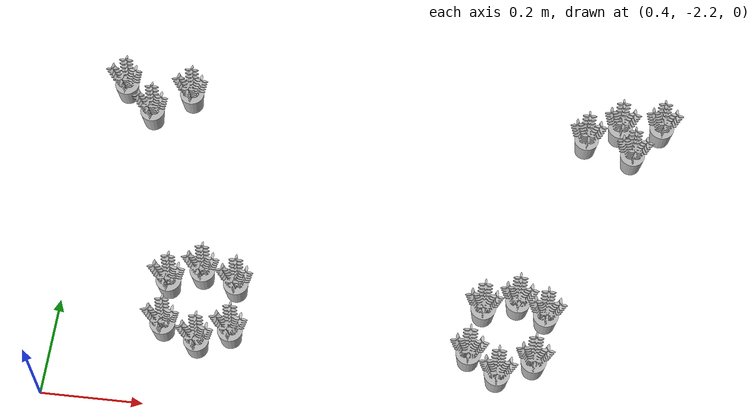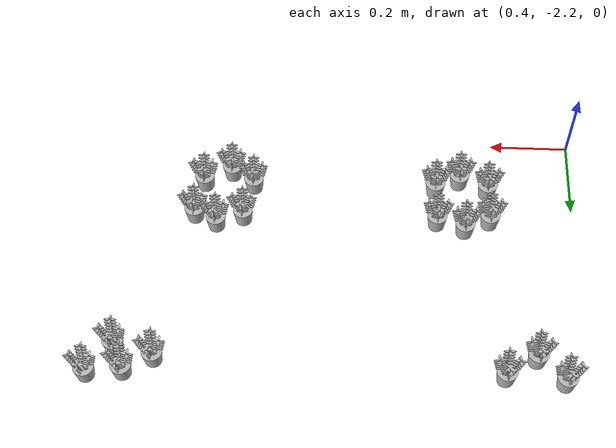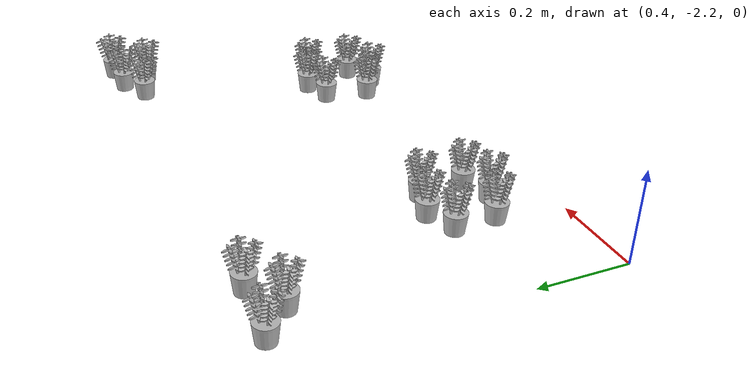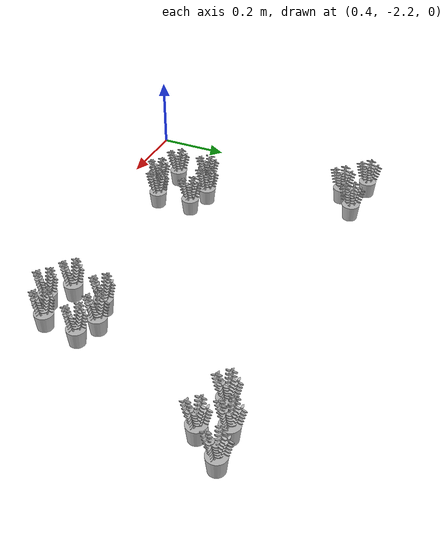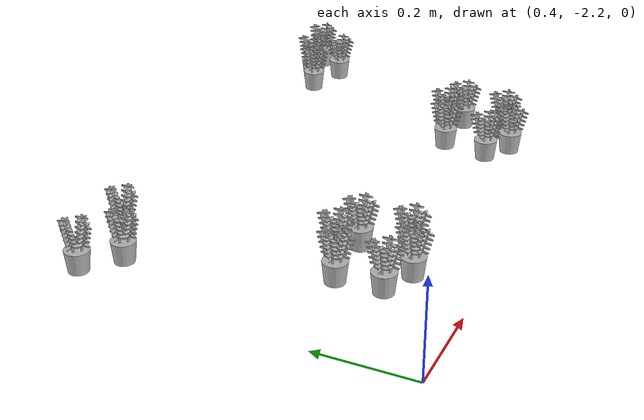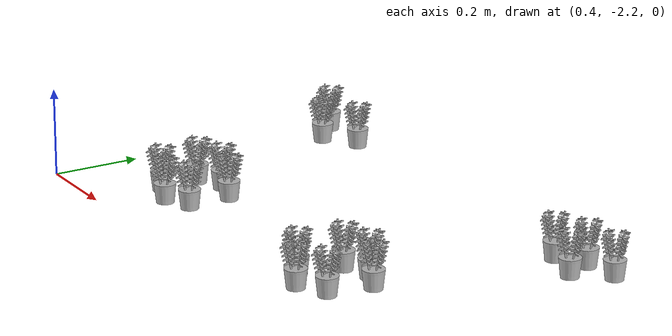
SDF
<sdf version="1.10">
 <world name="default">
  <model name="Plant_white_11">
   <static>false</static>
   <link name="link_0">
    <inertial>
     <pose>0 0 0.02 0 0 0</pose>
     <mass>0.025000000000000001</mass>
     <inertia>
      <ixx>2.5000000000000001e-05</ixx>
      <ixy>0</ixy>
      <ixz>0</ixz>
      <iyy>2.5000000000000001e-05</iyy>
      <iyz>0</iyz>
      <izz>7.9999999999999996e-06</izz>
     </inertia>
    </inertial>
    <visual name="visual">
     <geometry><mesh><uri>model://Plants/plant_white.dae</uri><scale>0.001 0.001 0.001</scale></mesh></geometry>
    </visual>
    <collision name="collision">
     <max_contacts>3</max_contacts>
     <pose>0 0 0.050000000000000003 0 0 0</pose>
     <geometry>
      <cylinder><radius>0.025000000000000001</radius><length>0.10000000000000001</length></cylinder>
     </geometry>
     <surface>
      <friction>
       <ode><mu>0.90000000000000002</mu><mu2>0.90000000000000002</mu2></ode>
       <torsional>
        <coefficient>1</coefficient>
        <patch_radius>0</patch_radius>
        <surface_radius>0</surface_radius>
        <use_patch_radius>true</use_patch_radius>
        <ode><slip>0</slip></ode>
       </torsional>
      </friction>
      <contact>
       <ode>
        <soft_cfm>0</soft_cfm>
        <soft_erp>0.20000000000000001</soft_erp>
        <kp>10</kp>
        <kd>1000000000</kd>
        <max_vel>0</max_vel>
        <min_depth>0.01</min_depth>
       </ode>
      </contact>
     </surface>
    </collision>
   </link>
   <pose>0.58798115037459942 -1.5186695398473964 0 0 0 0</pose>
   <plugin filename="gz-sim-label-system" name="gz::sim::systems::Label"><label>6</label></plugin>
  </model>
  <model name="Plant_white_14">
   <static>false</static>
   <link name="link_0">
    <inertial>
     <pose>0 0 0.02 0 0 0</pose>
     <mass>0.025000000000000001</mass>
     <inertia>
      <ixx>2.5000000000000001e-05</ixx>
      <ixy>0</ixy>
      <ixz>0</ixz>
      <iyy>2.5000000000000001e-05</iyy>
      <iyz>0</iyz>
      <izz>7.9999999999999996e-06</izz>
     </inertia>
    </inertial>
    <visual name="visual">
     <geometry><mesh><uri>model://Plants/plant_white.dae</uri><scale>0.001 0.001 0.001</scale></mesh></geometry>
    </visual>
    <collision name="collision">
     <max_contacts>3</max_contacts>
     <pose>0 0 0.050000000000000003 0 0 0</pose>
     <geometry>
      <cylinder><radius>0.025000000000000001</radius><length>0.10000000000000001</length></cylinder>
     </geometry>
     <surface>
      <friction>
       <ode><mu>0.90000000000000002</mu><mu2>0.90000000000000002</mu2></ode>
       <torsional>
        <coefficient>1</coefficient>
        <patch_radius>0</patch_radius>
        <surface_radius>0</surface_radius>
        <use_patch_radius>true</use_patch_radius>
        <ode><slip>0</slip></ode>
       </torsional>
      </friction>
      <contact>
       <ode>
        <soft_cfm>0</soft_cfm>
        <soft_erp>0.20000000000000001</soft_erp>
        <kp>10</kp>
        <kd>1000000000</kd>
        <max_vel>0</max_vel>
        <min_depth>0.01</min_depth>
       </ode>
      </contact>
     </surface>
    </collision>
   </link>
   <pose>0.51274546992780001 -1.5685086130890789 0 0 0 0</pose>
   <plugin filename="gz-sim-label-system" name="gz::sim::systems::Label"><label>6</label></plugin>
  </model>
  <model name="Plant_white_15">
   <static>false</static>
   <link name="link_0">
    <inertial>
     <pose>0 0 0.02 0 0 0</pose>
     <mass>0.025000000000000001</mass>
     <inertia>
      <ixx>2.5000000000000001e-05</ixx>
      <ixy>0</ixy>
      <ixz>0</ixz>
      <iyy>2.5000000000000001e-05</iyy>
      <iyz>0</iyz>
      <izz>7.9999999999999996e-06</izz>
     </inertia>
    </inertial>
    <visual name="visual">
     <geometry><mesh><uri>model://Plants/plant_white.dae</uri><scale>0.001 0.001 0.001</scale></mesh></geometry>
    </visual>
    <collision name="collision">
     <max_contacts>3</max_contacts>
     <pose>0 0 0.050000000000000003 0 0 0</pose>
     <geometry>
      <cylinder><radius>0.025000000000000001</radius><length>0.10000000000000001</length></cylinder>
     </geometry>
     <surface>
      <friction>
       <ode><mu>0.90000000000000002</mu><mu2>0.90000000000000002</mu2></ode>
       <torsional>
        <coefficient>1</coefficient>
        <patch_radius>0</patch_radius>
        <surface_radius>0</surface_radius>
        <use_patch_radius>true</use_patch_radius>
        <ode><slip>0</slip></ode>
       </torsional>
      </friction>
      <contact>
       <ode>
        <soft_cfm>0</soft_cfm>
        <soft_erp>0.20000000000000001</soft_erp>
        <kp>10</kp>
        <kd>1000000000</kd>
        <max_vel>0</max_vel>
        <min_depth>0.01</min_depth>
       </ode>
      </contact>
     </surface>
    </collision>
   </link>
   <pose>0.44913160393658186 -1.5100517375998344 0 0 0 0</pose>
   <plugin filename="gz-sim-label-system" name="gz::sim::systems::Label"><label>6</label></plugin>
  </model>
  <model name="Plant_white_17">
   <static>false</static>
   <link name="link_0">
    <inertial>
     <pose>0 0 0.02 0 0 0</pose>
     <mass>0.025000000000000001</mass>
     <inertia>
      <ixx>2.5000000000000001e-05</ixx>
      <ixy>0</ixy>
      <ixz>0</ixz>
      <iyy>2.5000000000000001e-05</iyy>
      <iyz>0</iyz>
      <izz>7.9999999999999996e-06</izz>
     </inertia>
    </inertial>
    <visual name="visual">
     <geometry><mesh><uri>model://Plants/plant_white.dae</uri><scale>0.001 0.001 0.001</scale></mesh></geometry>
    </visual>
    <collision name="collision">
     <max_contacts>3</max_contacts>
     <pose>0 0 0.050000000000000003 0 0 0</pose>
     <geometry>
      <cylinder><radius>0.025000000000000001</radius><length>0.10000000000000001</length></cylinder>
     </geometry>
     <surface>
      <friction>
       <ode><mu>0.90000000000000002</mu><mu2>0.90000000000000002</mu2></ode>
       <torsional>
        <coefficient>1</coefficient>
        <patch_radius>0</patch_radius>
        <surface_radius>0</surface_radius>
        <use_patch_radius>true</use_patch_radius>
        <ode><slip>0</slip></ode>
       </torsional>
      </friction>
      <contact>
       <ode>
        <soft_cfm>0</soft_cfm>
        <soft_erp>0.20000000000000001</soft_erp>
        <kp>10</kp>
        <kd>1000000000</kd>
        <max_vel>0</max_vel>
        <min_depth>0.01</min_depth>
       </ode>
      </contact>
     </surface>
    </collision>
   </link>
   <pose>0.74503902007755074 -1.945533592182525 0 0 0 0</pose>
   <plugin filename="gz-sim-label-system" name="gz::sim::systems::Label"><label>6</label></plugin>
  </model>
  <model name="Plant_white_18">
   <static>false</static>
   <link name="link_0">
    <inertial>
     <pose>0 0 0.02 0 0 0</pose>
     <mass>0.025000000000000001</mass>
     <inertia>
      <ixx>2.5000000000000001e-05</ixx>
      <ixy>0</ixy>
      <ixz>0</ixz>
      <iyy>2.5000000000000001e-05</iyy>
      <iyz>0</iyz>
      <izz>7.9999999999999996e-06</izz>
     </inertia>
    </inertial>
    <visual name="visual">
     <geometry><mesh><uri>model://Plants/plant_white.dae</uri><scale>0.001 0.001 0.001</scale></mesh></geometry>
    </visual>
    <collision name="collision">
     <max_contacts>3</max_contacts>
     <pose>0 0 0.050000000000000003 0 0 0</pose>
     <geometry>
      <cylinder><radius>0.025000000000000001</radius><length>0.10000000000000001</length></cylinder>
     </geometry>
     <surface>
      <friction>
       <ode><mu>0.90000000000000002</mu><mu2>0.90000000000000002</mu2></ode>
       <torsional>
        <coefficient>1</coefficient>
        <patch_radius>0</patch_radius>
        <surface_radius>0</surface_radius>
        <use_patch_radius>true</use_patch_radius>
        <ode><slip>0</slip></ode>
       </torsional>
      </friction>
      <contact>
       <ode>
        <soft_cfm>0</soft_cfm>
        <soft_erp>0.20000000000000001</soft_erp>
        <kp>10</kp>
        <kd>1000000000</kd>
        <max_vel>0</max_vel>
        <min_depth>0.01</min_depth>
       </ode>
      </contact>
     </surface>
    </collision>
   </link>
   <pose>0.67535575777201484 -1.9248205999820047 0 0 0 0</pose>
   <plugin filename="gz-sim-label-system" name="gz::sim::systems::Label"><label>6</label></plugin>
  </model>
  <model name="Plant_white_19">
   <static>false</static>
   <link name="link_0">
    <inertial>
     <pose>0 0 0.02 0 0 0</pose>
     <mass>0.025000000000000001</mass>
     <inertia>
      <ixx>2.5000000000000001e-05</ixx>
      <ixy>0</ixy>
      <ixz>0</ixz>
      <iyy>2.5000000000000001e-05</iyy>
      <iyz>0</iyz>
      <izz>7.9999999999999996e-06</izz>
     </inertia>
    </inertial>
    <visual name="visual">
     <geometry><mesh><uri>model://Plants/plant_white.dae</uri><scale>0.001 0.001 0.001</scale></mesh></geometry>
    </visual>
    <collision name="collision">
     <max_contacts>3</max_contacts>
     <pose>0 0 0.050000000000000003 0 0 0</pose>
     <geometry>
      <cylinder><radius>0.025000000000000001</radius><length>0.10000000000000001</length></cylinder>
     </geometry>
     <surface>
      <friction>
       <ode><mu>0.90000000000000002</mu><mu2>0.90000000000000002</mu2></ode>
       <torsional>
        <coefficient>1</coefficient>
        <patch_radius>0</patch_radius>
        <surface_radius>0</surface_radius>
        <use_patch_radius>true</use_patch_radius>
        <ode><slip>0</slip></ode>
       </torsional>
      </friction>
      <contact>
       <ode>
        <soft_cfm>0</soft_cfm>
        <soft_erp>0.20000000000000001</soft_erp>
        <kp>10</kp>
        <kd>1000000000</kd>
        <max_vel>0</max_vel>
        <min_depth>0.01</min_depth>
       </ode>
      </contact>
     </surface>
    </collision>
   </link>
   <pose>0.61219978659667595 -1.9526783761856126 0 0 0 0</pose>
   <plugin filename="gz-sim-label-system" name="gz::sim::systems::Label"><label>6</label></plugin>
  </model>
  <model name="Plant_white_20">
   <static>false</static>
   <link name="link_0">
    <inertial>
     <pose>0 0 0.02 0 0 0</pose>
     <mass>0.025000000000000001</mass>
     <inertia>
      <ixx>2.5000000000000001e-05</ixx>
      <ixy>0</ixy>
      <ixz>0</ixz>
      <iyy>2.5000000000000001e-05</iyy>
      <iyz>0</iyz>
      <izz>7.9999999999999996e-06</izz>
     </inertia>
    </inertial>
    <visual name="visual">
     <geometry><mesh><uri>model://Plants/plant_white.dae</uri><scale>0.001 0.001 0.001</scale></mesh></geometry>
    </visual>
    <collision name="collision">
     <max_contacts>3</max_contacts>
     <pose>0 0 0.050000000000000003 0 0 0</pose>
     <geometry>
      <cylinder><radius>0.025000000000000001</radius><length>0.10000000000000001</length></cylinder>
     </geometry>
     <surface>
      <friction>
       <ode><mu>0.90000000000000002</mu><mu2>0.90000000000000002</mu2></ode>
       <torsional>
        <coefficient>1</coefficient>
        <patch_radius>0</patch_radius>
        <surface_radius>0</surface_radius>
        <use_patch_radius>true</use_patch_radius>
        <ode><slip>0</slip></ode>
       </torsional>
      </friction>
      <contact>
       <ode>
        <soft_cfm>0</soft_cfm>
        <soft_erp>0.20000000000000001</soft_erp>
        <kp>10</kp>
        <kd>1000000000</kd>
        <max_vel>0</max_vel>
        <min_depth>0.01</min_depth>
       </ode>
      </contact>
     </surface>
    </collision>
   </link>
   <pose>0.74883161095361794 -2.0462406851493422 0 0 0 0</pose>
   <plugin filename="gz-sim-label-system" name="gz::sim::systems::Label"><label>6</label></plugin>
  </model>
  <model name="Plant_white_21">
   <static>false</static>
   <link name="link_0">
    <inertial>
     <pose>0 0 0.02 0 0 0</pose>
     <mass>0.025000000000000001</mass>
     <inertia>
      <ixx>2.5000000000000001e-05</ixx>
      <ixy>0</ixy>
      <ixz>0</ixz>
      <iyy>2.5000000000000001e-05</iyy>
      <iyz>0</iyz>
      <izz>7.9999999999999996e-06</izz>
     </inertia>
    </inertial>
    <visual name="visual">
     <geometry><mesh><uri>model://Plants/plant_white.dae</uri><scale>0.001 0.001 0.001</scale></mesh></geometry>
    </visual>
    <collision name="collision">
     <max_contacts>3</max_contacts>
     <pose>0 0 0.050000000000000003 0 0 0</pose>
     <geometry>
      <cylinder><radius>0.025000000000000001</radius><length>0.10000000000000001</length></cylinder>
     </geometry>
     <surface>
      <friction>
       <ode><mu>0.90000000000000002</mu><mu2>0.90000000000000002</mu2></ode>
       <torsional>
        <coefficient>1</coefficient>
        <patch_radius>0</patch_radius>
        <surface_radius>0</surface_radius>
        <use_patch_radius>true</use_patch_radius>
        <ode><slip>0</slip></ode>
       </torsional>
      </friction>
      <contact>
       <ode>
        <soft_cfm>0</soft_cfm>
        <soft_erp>0.20000000000000001</soft_erp>
        <kp>10</kp>
        <kd>1000000000</kd>
        <max_vel>0</max_vel>
        <min_depth>0.01</min_depth>
       </ode>
      </contact>
     </surface>
    </collision>
   </link>
   <pose>0.68671060132311668 -2.0742121006985648 0 0 0 0</pose>
   <plugin filename="gz-sim-label-system" name="gz::sim::systems::Label"><label>6</label></plugin>
  </model>
  <model name="Plant_white_22">
   <static>false</static>
   <link name="link_0">
    <inertial>
     <pose>0 0 0.02 0 0 0</pose>
     <mass>0.025000000000000001</mass>
     <inertia>
      <ixx>2.5000000000000001e-05</ixx>
      <ixy>0</ixy>
      <ixz>0</ixz>
      <iyy>2.5000000000000001e-05</iyy>
      <iyz>0</iyz>
      <izz>7.9999999999999996e-06</izz>
     </inertia>
    </inertial>
    <visual name="visual">
     <geometry><mesh><uri>model://Plants/plant_white.dae</uri><scale>0.001 0.001 0.001</scale></mesh></geometry>
    </visual>
    <collision name="collision">
     <max_contacts>3</max_contacts>
     <pose>0 0 0.050000000000000003 0 0 0</pose>
     <geometry>
      <cylinder><radius>0.025000000000000001</radius><length>0.10000000000000001</length></cylinder>
     </geometry>
     <surface>
      <friction>
       <ode><mu>0.90000000000000002</mu><mu2>0.90000000000000002</mu2></ode>
       <torsional>
        <coefficient>1</coefficient>
        <patch_radius>0</patch_radius>
        <surface_radius>0</surface_radius>
        <use_patch_radius>true</use_patch_radius>
        <ode><slip>0</slip></ode>
       </torsional>
      </friction>
      <contact>
       <ode>
        <soft_cfm>0</soft_cfm>
        <soft_erp>0.20000000000000001</soft_erp>
        <kp>10</kp>
        <kd>1000000000</kd>
        <max_vel>0</max_vel>
        <min_depth>0.01</min_depth>
       </ode>
      </contact>
     </surface>
    </collision>
   </link>
   <pose>0.61601481383044798 -2.0457833042459299 0 0 0 0</pose>
   <plugin filename="gz-sim-label-system" name="gz::sim::systems::Label"><label>6</label></plugin>
  </model>
  <model name="Plant_white_23">
   <static>false</static>
   <link name="link_0">
    <inertial>
     <pose>0 0 0.02 0 0 0</pose>
     <mass>0.025000000000000001</mass>
     <inertia>
      <ixx>2.5000000000000001e-05</ixx>
      <ixy>0</ixy>
      <ixz>0</ixz>
      <iyy>2.5000000000000001e-05</iyy>
      <iyz>0</iyz>
      <izz>7.9999999999999996e-06</izz>
     </inertia>
    </inertial>
    <visual name="visual">
     <geometry><mesh><uri>model://Plants/plant_white.dae</uri><scale>0.001 0.001 0.001</scale></mesh></geometry>
    </visual>
    <collision name="collision">
     <max_contacts>3</max_contacts>
     <pose>0 0 0.050000000000000003 0 0 0</pose>
     <geometry>
      <cylinder><radius>0.025000000000000001</radius><length>0.10000000000000001</length></cylinder>
     </geometry>
     <surface>
      <friction>
       <ode><mu>0.90000000000000002</mu><mu2>0.90000000000000002</mu2></ode>
       <torsional>
        <coefficient>1</coefficient>
        <patch_radius>0</patch_radius>
        <surface_radius>0</surface_radius>
        <use_patch_radius>true</use_patch_radius>
        <ode><slip>0</slip></ode>
       </torsional>
      </friction>
      <contact>
       <ode>
        <soft_cfm>0</soft_cfm>
        <soft_erp>0.20000000000000001</soft_erp>
        <kp>10</kp>
        <kd>1000000000</kd>
        <max_vel>0</max_vel>
        <min_depth>0.01</min_depth>
       </ode>
      </contact>
     </surface>
    </collision>
   </link>
   <pose>1.3553495180494926 -1.9459437684202601 0 0 0 0</pose>
   <plugin filename="gz-sim-label-system" name="gz::sim::systems::Label"><label>6</label></plugin>
  </model>
  <model name="Plant_white_24">
   <static>false</static>
   <link name="link_0">
    <inertial>
     <pose>0 0 0.02 0 0 0</pose>
     <mass>0.025000000000000001</mass>
     <inertia>
      <ixx>2.5000000000000001e-05</ixx>
      <ixy>0</ixy>
      <ixz>0</ixz>
      <iyy>2.5000000000000001e-05</iyy>
      <iyz>0</iyz>
      <izz>7.9999999999999996e-06</izz>
     </inertia>
    </inertial>
    <visual name="visual">
     <geometry><mesh><uri>model://Plants/plant_white.dae</uri><scale>0.001 0.001 0.001</scale></mesh></geometry>
    </visual>
    <collision name="collision">
     <max_contacts>3</max_contacts>
     <pose>0 0 0.050000000000000003 0 0 0</pose>
     <geometry>
      <cylinder><radius>0.025000000000000001</radius><length>0.10000000000000001</length></cylinder>
     </geometry>
     <surface>
      <friction>
       <ode><mu>0.90000000000000002</mu><mu2>0.90000000000000002</mu2></ode>
       <torsional>
        <coefficient>1</coefficient>
        <patch_radius>0</patch_radius>
        <surface_radius>0</surface_radius>
        <use_patch_radius>true</use_patch_radius>
        <ode><slip>0</slip></ode>
       </torsional>
      </friction>
      <contact>
       <ode>
        <soft_cfm>0</soft_cfm>
        <soft_erp>0.20000000000000001</soft_erp>
        <kp>10</kp>
        <kd>1000000000</kd>
        <max_vel>0</max_vel>
        <min_depth>0.01</min_depth>
       </ode>
      </contact>
     </surface>
    </collision>
   </link>
   <pose>1.2995291292706459 -1.9216652208860674 0 0 0 0</pose>
   <plugin filename="gz-sim-label-system" name="gz::sim::systems::Label"><label>6</label></plugin>
  </model>
  <model name="Plant_white_25">
   <static>false</static>
   <link name="link_0">
    <inertial>
     <pose>0 0 0.02 0 0 0</pose>
     <mass>0.025000000000000001</mass>
     <inertia>
      <ixx>2.5000000000000001e-05</ixx>
      <ixy>0</ixy>
      <ixz>0</ixz>
      <iyy>2.5000000000000001e-05</iyy>
      <iyz>0</iyz>
      <izz>7.9999999999999996e-06</izz>
     </inertia>
    </inertial>
    <visual name="visual">
     <geometry><mesh><uri>model://Plants/plant_white.dae</uri><scale>0.001 0.001 0.001</scale></mesh></geometry>
    </visual>
    <collision name="collision">
     <max_contacts>3</max_contacts>
     <pose>0 0 0.050000000000000003 0 0 0</pose>
     <geometry>
      <cylinder><radius>0.025000000000000001</radius><length>0.10000000000000001</length></cylinder>
     </geometry>
     <surface>
      <friction>
       <ode><mu>0.90000000000000002</mu><mu2>0.90000000000000002</mu2></ode>
       <torsional>
        <coefficient>1</coefficient>
        <patch_radius>0</patch_radius>
        <surface_radius>0</surface_radius>
        <use_patch_radius>true</use_patch_radius>
        <ode><slip>0</slip></ode>
       </torsional>
      </friction>
      <contact>
       <ode>
        <soft_cfm>0</soft_cfm>
        <soft_erp>0.20000000000000001</soft_erp>
        <kp>10</kp>
        <kd>1000000000</kd>
        <max_vel>0</max_vel>
        <min_depth>0.01</min_depth>
       </ode>
      </contact>
     </surface>
    </collision>
   </link>
   <pose>1.2330378569414615 -1.9438222072882883 0 0 0 0</pose>
   <plugin filename="gz-sim-label-system" name="gz::sim::systems::Label"><label>6</label></plugin>
  </model>
  <model name="Plant_white_26">
   <static>false</static>
   <link name="link_0">
    <inertial>
     <pose>0 0 0.02 0 0 0</pose>
     <mass>0.025000000000000001</mass>
     <inertia>
      <ixx>2.5000000000000001e-05</ixx>
      <ixy>0</ixy>
      <ixz>0</ixz>
      <iyy>2.5000000000000001e-05</iyy>
      <iyz>0</iyz>
      <izz>7.9999999999999996e-06</izz>
     </inertia>
    </inertial>
    <visual name="visual">
     <geometry><mesh><uri>model://Plants/plant_white.dae</uri><scale>0.001 0.001 0.001</scale></mesh></geometry>
    </visual>
    <collision name="collision">
     <max_contacts>3</max_contacts>
     <pose>0 0 0.050000000000000003 0 0 0</pose>
     <geometry>
      <cylinder><radius>0.025000000000000001</radius><length>0.10000000000000001</length></cylinder>
     </geometry>
     <surface>
      <friction>
       <ode><mu>0.90000000000000002</mu><mu2>0.90000000000000002</mu2></ode>
       <torsional>
        <coefficient>1</coefficient>
        <patch_radius>0</patch_radius>
        <surface_radius>0</surface_radius>
        <use_patch_radius>true</use_patch_radius>
        <ode><slip>0</slip></ode>
       </torsional>
      </friction>
      <contact>
       <ode>
        <soft_cfm>0</soft_cfm>
        <soft_erp>0.20000000000000001</soft_erp>
        <kp>10</kp>
        <kd>1000000000</kd>
        <max_vel>0</max_vel>
        <min_depth>0.01</min_depth>
       </ode>
      </contact>
     </surface>
    </collision>
   </link>
   <pose>1.338562182582669 -2.0458517258644227 0 0 0 0</pose>
   <plugin filename="gz-sim-label-system" name="gz::sim::systems::Label"><label>6</label></plugin>
  </model>
  <model name="Plant_white_27">
   <static>false</static>
   <link name="link_0">
    <inertial>
     <pose>0 0 0.02 0 0 0</pose>
     <mass>0.025000000000000001</mass>
     <inertia>
      <ixx>2.5000000000000001e-05</ixx>
      <ixy>0</ixy>
      <ixz>0</ixz>
      <iyy>2.5000000000000001e-05</iyy>
      <iyz>0</iyz>
      <izz>7.9999999999999996e-06</izz>
     </inertia>
    </inertial>
    <visual name="visual">
     <geometry><mesh><uri>model://Plants/plant_white.dae</uri><scale>0.001 0.001 0.001</scale></mesh></geometry>
    </visual>
    <collision name="collision">
     <max_contacts>3</max_contacts>
     <pose>0 0 0.050000000000000003 0 0 0</pose>
     <geometry>
      <cylinder><radius>0.025000000000000001</radius><length>0.10000000000000001</length></cylinder>
     </geometry>
     <surface>
      <friction>
       <ode><mu>0.90000000000000002</mu><mu2>0.90000000000000002</mu2></ode>
       <torsional>
        <coefficient>1</coefficient>
        <patch_radius>0</patch_radius>
        <surface_radius>0</surface_radius>
        <use_patch_radius>true</use_patch_radius>
        <ode><slip>0</slip></ode>
       </torsional>
      </friction>
      <contact>
       <ode>
        <soft_cfm>0</soft_cfm>
        <soft_erp>0.20000000000000001</soft_erp>
        <kp>10</kp>
        <kd>1000000000</kd>
        <max_vel>0</max_vel>
        <min_depth>0.01</min_depth>
       </ode>
      </contact>
     </surface>
    </collision>
   </link>
   <pose>1.2703937880515286 -2.0801638071072444 0 0 0 0</pose>
   <plugin filename="gz-sim-label-system" name="gz::sim::systems::Label"><label>6</label></plugin>
  </model>
  <model name="Plant_white_28">
   <static>false</static>
   <link name="link_0">
    <inertial>
     <pose>0 0 0.02 0 0 0</pose>
     <mass>0.025000000000000001</mass>
     <inertia>
      <ixx>2.5000000000000001e-05</ixx>
      <ixy>0</ixy>
      <ixz>0</ixz>
      <iyy>2.5000000000000001e-05</iyy>
      <iyz>0</iyz>
      <izz>7.9999999999999996e-06</izz>
     </inertia>
    </inertial>
    <visual name="visual">
     <geometry><mesh><uri>model://Plants/plant_white.dae</uri><scale>0.001 0.001 0.001</scale></mesh></geometry>
    </visual>
    <collision name="collision">
     <max_contacts>3</max_contacts>
     <pose>0 0 0.050000000000000003 0 0 0</pose>
     <geometry>
      <cylinder><radius>0.025000000000000001</radius><length>0.10000000000000001</length></cylinder>
     </geometry>
     <surface>
      <friction>
       <ode><mu>0.90000000000000002</mu><mu2>0.90000000000000002</mu2></ode>
       <torsional>
        <coefficient>1</coefficient>
        <patch_radius>0</patch_radius>
        <surface_radius>0</surface_radius>
        <use_patch_radius>true</use_patch_radius>
        <ode><slip>0</slip></ode>
       </torsional>
      </friction>
      <contact>
       <ode>
        <soft_cfm>0</soft_cfm>
        <soft_erp>0.20000000000000001</soft_erp>
        <kp>10</kp>
        <kd>1000000000</kd>
        <max_vel>0</max_vel>
        <min_depth>0.01</min_depth>
       </ode>
      </contact>
     </surface>
    </collision>
   </link>
   <pose>1.2126607859572247 -2.0425386274480593 0 0 0 0</pose>
   <plugin filename="gz-sim-label-system" name="gz::sim::systems::Label"><label>6</label></plugin>
  </model>
  <model name="Plant_white_29">
   <static>false</static>
   <link name="link_0">
    <inertial>
     <pose>0 0 0.02 0 0 0</pose>
     <mass>0.025000000000000001</mass>
     <inertia>
      <ixx>2.5000000000000001e-05</ixx>
      <ixy>0</ixy>
      <ixz>0</ixz>
      <iyy>2.5000000000000001e-05</iyy>
      <iyz>0</iyz>
      <izz>7.9999999999999996e-06</izz>
     </inertia>
    </inertial>
    <visual name="visual">
     <geometry><mesh><uri>model://Plants/plant_white.dae</uri><scale>0.001 0.001 0.001</scale></mesh></geometry>
    </visual>
    <collision name="collision">
     <max_contacts>3</max_contacts>
     <pose>0 0 0.050000000000000003 0 0 0</pose>
     <geometry>
      <cylinder><radius>0.025000000000000001</radius><length>0.10000000000000001</length></cylinder>
     </geometry>
     <surface>
      <friction>
       <ode><mu>0.90000000000000002</mu><mu2>0.90000000000000002</mu2></ode>
       <torsional>
        <coefficient>1</coefficient>
        <patch_radius>0</patch_radius>
        <surface_radius>0</surface_radius>
        <use_patch_radius>true</use_patch_radius>
        <ode><slip>0</slip></ode>
       </torsional>
      </friction>
      <contact>
       <ode>
        <soft_cfm>0</soft_cfm>
        <soft_erp>0.20000000000000001</soft_erp>
        <kp>10</kp>
        <kd>1000000000</kd>
        <max_vel>0</max_vel>
        <min_depth>0.01</min_depth>
       </ode>
      </contact>
     </surface>
    </collision>
   </link>
   <pose>1.5648061848801218 -1.4925844142991336 0 0 0 0</pose>
   <plugin filename="gz-sim-label-system" name="gz::sim::systems::Label"><label>6</label></plugin>
  </model>
  <model name="Plant_white_30">
   <static>false</static>
   <link name="link_0">
    <inertial>
     <pose>0 0 0.02 0 0 0</pose>
     <mass>0.025000000000000001</mass>
     <inertia>
      <ixx>2.5000000000000001e-05</ixx>
      <ixy>0</ixy>
      <ixz>0</ixz>
      <iyy>2.5000000000000001e-05</iyy>
      <iyz>0</iyz>
      <izz>7.9999999999999996e-06</izz>
     </inertia>
    </inertial>
    <visual name="visual">
     <geometry><mesh><uri>model://Plants/plant_white.dae</uri><scale>0.001 0.001 0.001</scale></mesh></geometry>
    </visual>
    <collision name="collision">
     <max_contacts>3</max_contacts>
     <pose>0 0 0.050000000000000003 0 0 0</pose>
     <geometry>
      <cylinder><radius>0.025000000000000001</radius><length>0.10000000000000001</length></cylinder>
     </geometry>
     <surface>
      <friction>
       <ode><mu>0.90000000000000002</mu><mu2>0.90000000000000002</mu2></ode>
       <torsional>
        <coefficient>1</coefficient>
        <patch_radius>0</patch_radius>
        <surface_radius>0</surface_radius>
        <use_patch_radius>true</use_patch_radius>
        <ode><slip>0</slip></ode>
       </torsional>
      </friction>
      <contact>
       <ode>
        <soft_cfm>0</soft_cfm>
        <soft_erp>0.20000000000000001</soft_erp>
        <kp>10</kp>
        <kd>1000000000</kd>
        <max_vel>0</max_vel>
        <min_depth>0.01</min_depth>
       </ode>
      </contact>
     </surface>
    </collision>
   </link>
   <pose>1.5074794163706924 -1.564255842076302 0 0 0 0</pose>
   <plugin filename="gz-sim-label-system" name="gz::sim::systems::Label"><label>6</label></plugin>
  </model>
  <model name="Plant_white_33">
   <static>false</static>
   <link name="link_0">
    <inertial>
     <pose>0 0 0.02 0 0 0</pose>
     <mass>0.025000000000000001</mass>
     <inertia>
      <ixx>2.5000000000000001e-05</ixx>
      <ixy>0</ixy>
      <ixz>0</ixz>
      <iyy>2.5000000000000001e-05</iyy>
      <iyz>0</iyz>
      <izz>7.9999999999999996e-06</izz>
     </inertia>
    </inertial>
    <visual name="visual">
     <geometry><mesh><uri>model://Plants/plant_white.dae</uri><scale>0.001 0.001 0.001</scale></mesh></geometry>
    </visual>
    <collision name="collision">
     <max_contacts>3</max_contacts>
     <pose>0 0 0.050000000000000003 0 0 0</pose>
     <geometry>
      <cylinder><radius>0.025000000000000001</radius><length>0.10000000000000001</length></cylinder>
     </geometry>
     <surface>
      <friction>
       <ode><mu>0.90000000000000002</mu><mu2>0.90000000000000002</mu2></ode>
       <torsional>
        <coefficient>1</coefficient>
        <patch_radius>0</patch_radius>
        <surface_radius>0</surface_radius>
        <use_patch_radius>true</use_patch_radius>
        <ode><slip>0</slip></ode>
       </torsional>
      </friction>
      <contact>
       <ode>
        <soft_cfm>0</soft_cfm>
        <soft_erp>0.20000000000000001</soft_erp>
        <kp>10</kp>
        <kd>1000000000</kd>
        <max_vel>0</max_vel>
        <min_depth>0.01</min_depth>
       </ode>
      </contact>
     </surface>
    </collision>
   </link>
   <pose>1.4798094090768434 -1.5008934834441989 0 0 0 0</pose>
   <plugin filename="gz-sim-label-system" name="gz::sim::systems::Label"><label>6</label></plugin>
  </model>
  <model name="Plant_white_34">
   <static>false</static>
   <link name="link_0">
    <inertial>
     <pose>0 0 0.02 0 0 0</pose>
     <mass>0.025000000000000001</mass>
     <inertia>
      <ixx>2.5000000000000001e-05</ixx>
      <ixy>0</ixy>
      <ixz>0</ixz>
      <iyy>2.5000000000000001e-05</iyy>
      <iyz>0</iyz>
      <izz>7.9999999999999996e-06</izz>
     </inertia>
    </inertial>
    <visual name="visual">
     <geometry><mesh><uri>model://Plants/plant_white.dae</uri><scale>0.001 0.001 0.001</scale></mesh></geometry>
    </visual>
    <collision name="collision">
     <max_contacts>3</max_contacts>
     <pose>0 0 0.050000000000000003 0 0 0</pose>
     <geometry>
      <cylinder><radius>0.025000000000000001</radius><length>0.10000000000000001</length></cylinder>
     </geometry>
     <surface>
      <friction>
       <ode><mu>0.90000000000000002</mu><mu2>0.90000000000000002</mu2></ode>
       <torsional>
        <coefficient>1</coefficient>
        <patch_radius>0</patch_radius>
        <surface_radius>0</surface_radius>
        <use_patch_radius>true</use_patch_radius>
        <ode><slip>0</slip></ode>
       </torsional>
      </friction>
      <contact>
       <ode>
        <soft_cfm>0</soft_cfm>
        <soft_erp>0.20000000000000001</soft_erp>
        <kp>10</kp>
        <kd>1000000000</kd>
        <max_vel>0</max_vel>
        <min_depth>0.01</min_depth>
       </ode>
      </contact>
     </surface>
    </collision>
   </link>
   <pose>1.4120220086158164 -1.5374308808706862 0 0 0 0</pose>
   <plugin filename="gz-sim-label-system" name="gz::sim::systems::Label"><label>6</label></plugin>
  </model>
 </world>
</sdf>
